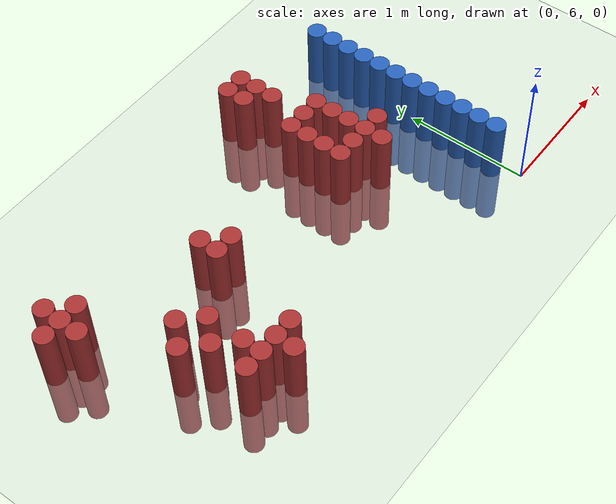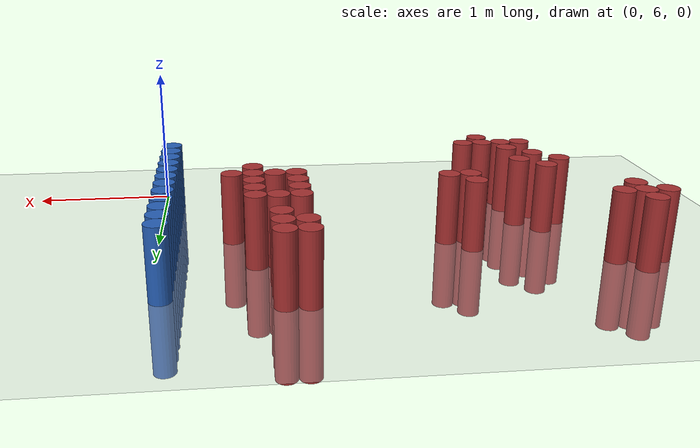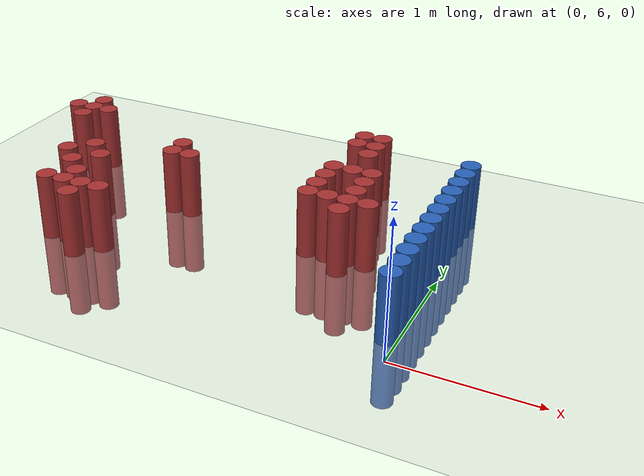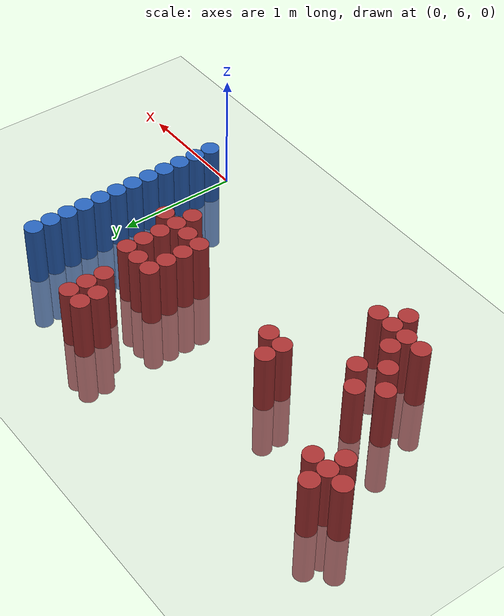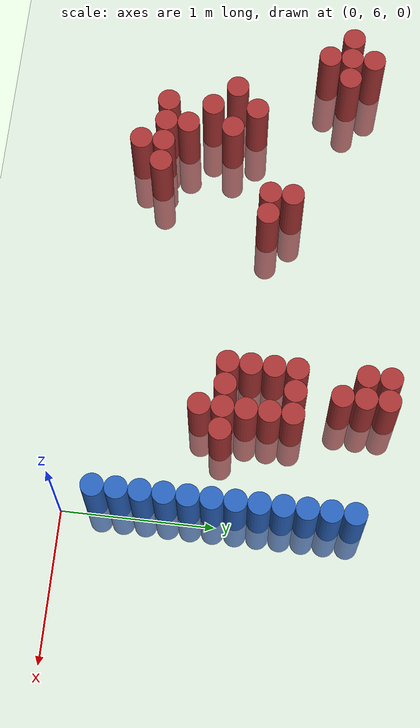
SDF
<sdf version="1.6">
 <world name="default">
  <model name="ground_plane">
   <static>1</static>
   <link name="link">
    <collision name="collision">
     <geometry><plane><normal>0 0 1</normal><size>100 100</size></plane></geometry>
     <surface><friction><ode><mu>100</mu><mu2>50</mu2></ode></friction></surface>
    </collision>
    <visual name="visual">
     <cast_shadows>0</cast_shadows>
     <geometry><plane><normal>0 0 1</normal><size>100 100</size></plane></geometry>
     <material>
      <script><uri>file://media/materials/scripts/gazebo.material</uri><name>Gazebo/Grey</name></script>
     </material>
    </visual>
   </link>
  </model>
  <model name="unit_cylinder_162">
   <static>1</static>
   <pose>-3.375000 7.575000 0.000000 0.000000 0.000000 0.000000</pose>
   <link name="link">
    <inertial>
     <mass>1</mass>
     <inertia><ixx>0.145833</ixx><ixy>0</ixy><ixz>0</ixz><iyy>0.145833</iyy><iyz>0</iyz><izz>0.125</izz></inertia>
    </inertial>
    <collision name="collision">
     <geometry><cylinder><radius>0.075000</radius><length>1</length></cylinder></geometry>
    </collision>
    <visual name="visual">
     <geometry><cylinder><radius>0.075000</radius><length>1</length></cylinder></geometry>
     <material>
      <ambient>0.648000 0.192000 0.192000 1</ambient>
      <diffuse>0.648000 0.192000 0.192000 1</diffuse>
     </material>
     <material>
      <script><name>Gazebo/Grey</name><uri>file://media/materials/scripts/gazebo.material</uri></script>
     </material>
    </visual>
   </link>
  </model>
  <model name="unit_cylinder_163">
   <static>1</static>
   <pose>-3.225000 7.425000 0.000000 0.000000 0.000000 0.000000</pose>
   <link name="link">
    <inertial>
     <mass>1</mass>
     <inertia><ixx>0.145833</ixx><ixy>0</ixy><ixz>0</ixz><iyy>0.145833</iyy><iyz>0</iyz><izz>0.125</izz></inertia>
    </inertial>
    <collision name="collision">
     <geometry><cylinder><radius>0.075000</radius><length>1</length></cylinder></geometry>
    </collision>
    <visual name="visual">
     <geometry><cylinder><radius>0.075000</radius><length>1</length></cylinder></geometry>
     <material>
      <ambient>0.648000 0.192000 0.192000 1</ambient>
      <diffuse>0.648000 0.192000 0.192000 1</diffuse>
     </material>
     <material>
      <script><name>Gazebo/Grey</name><uri>file://media/materials/scripts/gazebo.material</uri></script>
     </material>
    </visual>
   </link>
  </model>
  <model name="unit_cylinder_164">
   <static>1</static>
   <pose>-3.225000 7.575000 0.000000 0.000000 0.000000 0.000000</pose>
   <link name="link">
    <inertial>
     <mass>1</mass>
     <inertia><ixx>0.145833</ixx><ixy>0</ixy><ixz>0</ixz><iyy>0.145833</iyy><iyz>0</iyz><izz>0.125</izz></inertia>
    </inertial>
    <collision name="collision">
     <geometry><cylinder><radius>0.075000</radius><length>1</length></cylinder></geometry>
    </collision>
    <visual name="visual">
     <geometry><cylinder><radius>0.075000</radius><length>1</length></cylinder></geometry>
     <material>
      <ambient>0.648000 0.192000 0.192000 1</ambient>
      <diffuse>0.648000 0.192000 0.192000 1</diffuse>
     </material>
     <material>
      <script><name>Gazebo/Grey</name><uri>file://media/materials/scripts/gazebo.material</uri></script>
     </material>
    </visual>
   </link>
  </model>
  <model name="unit_cylinder_165">
   <static>1</static>
   <pose>-3.225000 7.725000 0.000000 0.000000 0.000000 0.000000</pose>
   <link name="link">
    <inertial>
     <mass>1</mass>
     <inertia><ixx>0.145833</ixx><ixy>0</ixy><ixz>0</ixz><iyy>0.145833</iyy><iyz>0</iyz><izz>0.125</izz></inertia>
    </inertial>
    <collision name="collision">
     <geometry><cylinder><radius>0.075000</radius><length>1</length></cylinder></geometry>
    </collision>
    <visual name="visual">
     <geometry><cylinder><radius>0.075000</radius><length>1</length></cylinder></geometry>
     <material>
      <ambient>0.648000 0.192000 0.192000 1</ambient>
      <diffuse>0.648000 0.192000 0.192000 1</diffuse>
     </material>
     <material>
      <script><name>Gazebo/Grey</name><uri>file://media/materials/scripts/gazebo.material</uri></script>
     </material>
    </visual>
   </link>
  </model>
  <model name="unit_cylinder_169">
   <static>1</static>
   <pose>-3.075000 7.575000 0.000000 0.000000 0.000000 0.000000</pose>
   <link name="link">
    <inertial>
     <mass>1</mass>
     <inertia><ixx>0.145833</ixx><ixy>0</ixy><ixz>0</ixz><iyy>0.145833</iyy><iyz>0</iyz><izz>0.125</izz></inertia>
    </inertial>
    <collision name="collision">
     <geometry><cylinder><radius>0.075000</radius><length>1</length></cylinder></geometry>
    </collision>
    <visual name="visual">
     <geometry><cylinder><radius>0.075000</radius><length>1</length></cylinder></geometry>
     <material>
      <ambient>0.648000 0.192000 0.192000 1</ambient>
      <diffuse>0.648000 0.192000 0.192000 1</diffuse>
     </material>
     <material>
      <script><name>Gazebo/Grey</name><uri>file://media/materials/scripts/gazebo.material</uri></script>
     </material>
    </visual>
   </link>
  </model>
  <model name="unit_cylinder_175">
   <static>1</static>
   <pose>-2.925000 6.825000 0.000000 0.000000 0.000000 0.000000</pose>
   <link name="link">
    <inertial>
     <mass>1</mass>
     <inertia><ixx>0.145833</ixx><ixy>0</ixy><ixz>0</ixz><iyy>0.145833</iyy><iyz>0</iyz><izz>0.125</izz></inertia>
    </inertial>
    <collision name="collision">
     <geometry><cylinder><radius>0.075000</radius><length>1</length></cylinder></geometry>
    </collision>
    <visual name="visual">
     <geometry><cylinder><radius>0.075000</radius><length>1</length></cylinder></geometry>
     <material>
      <ambient>0.648000 0.192000 0.192000 1</ambient>
      <diffuse>0.648000 0.192000 0.192000 1</diffuse>
     </material>
     <material>
      <script><name>Gazebo/Grey</name><uri>file://media/materials/scripts/gazebo.material</uri></script>
     </material>
    </visual>
   </link>
  </model>
  <model name="unit_cylinder_180">
   <static>1</static>
   <pose>-2.775000 6.375000 0.000000 0.000000 0.000000 0.000000</pose>
   <link name="link">
    <inertial>
     <mass>1</mass>
     <inertia><ixx>0.145833</ixx><ixy>0</ixy><ixz>0</ixz><iyy>0.145833</iyy><iyz>0</iyz><izz>0.125</izz></inertia>
    </inertial>
    <collision name="collision">
     <geometry><cylinder><radius>0.075000</radius><length>1</length></cylinder></geometry>
    </collision>
    <visual name="visual">
     <geometry><cylinder><radius>0.075000</radius><length>1</length></cylinder></geometry>
     <material>
      <ambient>0.648000 0.192000 0.192000 1</ambient>
      <diffuse>0.648000 0.192000 0.192000 1</diffuse>
     </material>
     <material>
      <script><name>Gazebo/Grey</name><uri>file://media/materials/scripts/gazebo.material</uri></script>
     </material>
    </visual>
   </link>
  </model>
  <model name="unit_cylinder_181">
   <static>1</static>
   <pose>-2.775000 6.675000 0.000000 0.000000 0.000000 0.000000</pose>
   <link name="link">
    <inertial>
     <mass>1</mass>
     <inertia><ixx>0.145833</ixx><ixy>0</ixy><ixz>0</ixz><iyy>0.145833</iyy><iyz>0</iyz><izz>0.125</izz></inertia>
    </inertial>
    <collision name="collision">
     <geometry><cylinder><radius>0.075000</radius><length>1</length></cylinder></geometry>
    </collision>
    <visual name="visual">
     <geometry><cylinder><radius>0.075000</radius><length>1</length></cylinder></geometry>
     <material>
      <ambient>0.648000 0.192000 0.192000 1</ambient>
      <diffuse>0.648000 0.192000 0.192000 1</diffuse>
     </material>
     <material>
      <script><name>Gazebo/Grey</name><uri>file://media/materials/scripts/gazebo.material</uri></script>
     </material>
    </visual>
   </link>
  </model>
  <model name="unit_cylinder_182">
   <static>1</static>
   <pose>-2.775000 6.975000 0.000000 0.000000 0.000000 0.000000</pose>
   <link name="link">
    <inertial>
     <mass>1</mass>
     <inertia><ixx>0.145833</ixx><ixy>0</ixy><ixz>0</ixz><iyy>0.145833</iyy><iyz>0</iyz><izz>0.125</izz></inertia>
    </inertial>
    <collision name="collision">
     <geometry><cylinder><radius>0.075000</radius><length>1</length></cylinder></geometry>
    </collision>
    <visual name="visual">
     <geometry><cylinder><radius>0.075000</radius><length>1</length></cylinder></geometry>
     <material>
      <ambient>0.648000 0.192000 0.192000 1</ambient>
      <diffuse>0.648000 0.192000 0.192000 1</diffuse>
     </material>
     <material>
      <script><name>Gazebo/Grey</name><uri>file://media/materials/scripts/gazebo.material</uri></script>
     </material>
    </visual>
   </link>
  </model>
  <model name="unit_cylinder_188">
   <static>1</static>
   <pose>-2.625000 6.375000 0.000000 0.000000 0.000000 0.000000</pose>
   <link name="link">
    <inertial>
     <mass>1</mass>
     <inertia><ixx>0.145833</ixx><ixy>0</ixy><ixz>0</ixz><iyy>0.145833</iyy><iyz>0</iyz><izz>0.125</izz></inertia>
    </inertial>
    <collision name="collision">
     <geometry><cylinder><radius>0.075000</radius><length>1</length></cylinder></geometry>
    </collision>
    <visual name="visual">
     <geometry><cylinder><radius>0.075000</radius><length>1</length></cylinder></geometry>
     <material>
      <ambient>0.648000 0.192000 0.192000 1</ambient>
      <diffuse>0.648000 0.192000 0.192000 1</diffuse>
     </material>
     <material>
      <script><name>Gazebo/Grey</name><uri>file://media/materials/scripts/gazebo.material</uri></script>
     </material>
    </visual>
   </link>
  </model>
  <model name="unit_cylinder_189">
   <static>1</static>
   <pose>-2.625000 6.525000 0.000000 0.000000 0.000000 0.000000</pose>
   <link name="link">
    <inertial>
     <mass>1</mass>
     <inertia><ixx>0.145833</ixx><ixy>0</ixy><ixz>0</ixz><iyy>0.145833</iyy><iyz>0</iyz><izz>0.125</izz></inertia>
    </inertial>
    <collision name="collision">
     <geometry><cylinder><radius>0.075000</radius><length>1</length></cylinder></geometry>
    </collision>
    <visual name="visual">
     <geometry><cylinder><radius>0.075000</radius><length>1</length></cylinder></geometry>
     <material>
      <ambient>0.648000 0.192000 0.192000 1</ambient>
      <diffuse>0.648000 0.192000 0.192000 1</diffuse>
     </material>
     <material>
      <script><name>Gazebo/Grey</name><uri>file://media/materials/scripts/gazebo.material</uri></script>
     </material>
    </visual>
   </link>
  </model>
  <model name="unit_cylinder_190">
   <static>1</static>
   <pose>-2.625000 6.825000 0.000000 0.000000 0.000000 0.000000</pose>
   <link name="link">
    <inertial>
     <mass>1</mass>
     <inertia><ixx>0.145833</ixx><ixy>0</ixy><ixz>0</ixz><iyy>0.145833</iyy><iyz>0</iyz><izz>0.125</izz></inertia>
    </inertial>
    <collision name="collision">
     <geometry><cylinder><radius>0.075000</radius><length>1</length></cylinder></geometry>
    </collision>
    <visual name="visual">
     <geometry><cylinder><radius>0.075000</radius><length>1</length></cylinder></geometry>
     <material>
      <ambient>0.648000 0.192000 0.192000 1</ambient>
      <diffuse>0.648000 0.192000 0.192000 1</diffuse>
     </material>
     <material>
      <script><name>Gazebo/Grey</name><uri>file://media/materials/scripts/gazebo.material</uri></script>
     </material>
    </visual>
   </link>
  </model>
  <model name="unit_cylinder_194">
   <static>1</static>
   <pose>-2.475000 6.225000 0.000000 0.000000 0.000000 0.000000</pose>
   <link name="link">
    <inertial>
     <mass>1</mass>
     <inertia><ixx>0.145833</ixx><ixy>0</ixy><ixz>0</ixz><iyy>0.145833</iyy><iyz>0</iyz><izz>0.125</izz></inertia>
    </inertial>
    <collision name="collision">
     <geometry><cylinder><radius>0.075000</radius><length>1</length></cylinder></geometry>
    </collision>
    <visual name="visual">
     <geometry><cylinder><radius>0.075000</radius><length>1</length></cylinder></geometry>
     <material>
      <ambient>0.648000 0.192000 0.192000 1</ambient>
      <diffuse>0.648000 0.192000 0.192000 1</diffuse>
     </material>
     <material>
      <script><name>Gazebo/Grey</name><uri>file://media/materials/scripts/gazebo.material</uri></script>
     </material>
    </visual>
   </link>
  </model>
  <model name="unit_cylinder_195">
   <static>1</static>
   <pose>-2.475000 6.375000 0.000000 0.000000 0.000000 0.000000</pose>
   <link name="link">
    <inertial>
     <mass>1</mass>
     <inertia><ixx>0.145833</ixx><ixy>0</ixy><ixz>0</ixz><iyy>0.145833</iyy><iyz>0</iyz><izz>0.125</izz></inertia>
    </inertial>
    <collision name="collision">
     <geometry><cylinder><radius>0.075000</radius><length>1</length></cylinder></geometry>
    </collision>
    <visual name="visual">
     <geometry><cylinder><radius>0.075000</radius><length>1</length></cylinder></geometry>
     <material>
      <ambient>0.648000 0.192000 0.192000 1</ambient>
      <diffuse>0.648000 0.192000 0.192000 1</diffuse>
     </material>
     <material>
      <script><name>Gazebo/Grey</name><uri>file://media/materials/scripts/gazebo.material</uri></script>
     </material>
    </visual>
   </link>
  </model>
  <model name="unit_cylinder_196">
   <static>1</static>
   <pose>-2.325000 6.375000 0.000000 0.000000 0.000000 0.000000</pose>
   <link name="link">
    <inertial>
     <mass>1</mass>
     <inertia><ixx>0.145833</ixx><ixy>0</ixy><ixz>0</ixz><iyy>0.145833</iyy><iyz>0</iyz><izz>0.125</izz></inertia>
    </inertial>
    <collision name="collision">
     <geometry><cylinder><radius>0.075000</radius><length>1</length></cylinder></geometry>
    </collision>
    <visual name="visual">
     <geometry><cylinder><radius>0.075000</radius><length>1</length></cylinder></geometry>
     <material>
      <ambient>0.648000 0.192000 0.192000 1</ambient>
      <diffuse>0.648000 0.192000 0.192000 1</diffuse>
     </material>
     <material>
      <script><name>Gazebo/Grey</name><uri>file://media/materials/scripts/gazebo.material</uri></script>
     </material>
    </visual>
   </link>
  </model>
  <model name="unit_cylinder_198">
   <static>1</static>
   <pose>-2.175000 7.125000 0.000000 0.000000 0.000000 0.000000</pose>
   <link name="link">
    <inertial>
     <mass>1</mass>
     <inertia><ixx>0.145833</ixx><ixy>0</ixy><ixz>0</ixz><iyy>0.145833</iyy><iyz>0</iyz><izz>0.125</izz></inertia>
    </inertial>
    <collision name="collision">
     <geometry><cylinder><radius>0.075000</radius><length>1</length></cylinder></geometry>
    </collision>
    <visual name="visual">
     <geometry><cylinder><radius>0.075000</radius><length>1</length></cylinder></geometry>
     <material>
      <ambient>0.648000 0.192000 0.192000 1</ambient>
      <diffuse>0.648000 0.192000 0.192000 1</diffuse>
     </material>
     <material>
      <script><name>Gazebo/Grey</name><uri>file://media/materials/scripts/gazebo.material</uri></script>
     </material>
    </visual>
   </link>
  </model>
  <model name="unit_cylinder_199">
   <static>1</static>
   <pose>-2.175000 7.275000 0.000000 0.000000 0.000000 0.000000</pose>
   <link name="link">
    <inertial>
     <mass>1</mass>
     <inertia><ixx>0.145833</ixx><ixy>0</ixy><ixz>0</ixz><iyy>0.145833</iyy><iyz>0</iyz><izz>0.125</izz></inertia>
    </inertial>
    <collision name="collision">
     <geometry><cylinder><radius>0.075000</radius><length>1</length></cylinder></geometry>
    </collision>
    <visual name="visual">
     <geometry><cylinder><radius>0.075000</radius><length>1</length></cylinder></geometry>
     <material>
      <ambient>0.648000 0.192000 0.192000 1</ambient>
      <diffuse>0.648000 0.192000 0.192000 1</diffuse>
     </material>
     <material>
      <script><name>Gazebo/Grey</name><uri>file://media/materials/scripts/gazebo.material</uri></script>
     </material>
    </visual>
   </link>
  </model>
  <model name="unit_cylinder_204">
   <static>1</static>
   <pose>-2.025000 7.125000 0.000000 0.000000 0.000000 0.000000</pose>
   <link name="link">
    <inertial>
     <mass>1</mass>
     <inertia><ixx>0.145833</ixx><ixy>0</ixy><ixz>0</ixz><iyy>0.145833</iyy><iyz>0</iyz><izz>0.125</izz></inertia>
    </inertial>
    <collision name="collision">
     <geometry><cylinder><radius>0.075000</radius><length>1</length></cylinder></geometry>
    </collision>
    <visual name="visual">
     <geometry><cylinder><radius>0.075000</radius><length>1</length></cylinder></geometry>
     <material>
      <ambient>0.648000 0.192000 0.192000 1</ambient>
      <diffuse>0.648000 0.192000 0.192000 1</diffuse>
     </material>
     <material>
      <script><name>Gazebo/Grey</name><uri>file://media/materials/scripts/gazebo.material</uri></script>
     </material>
    </visual>
   </link>
  </model>
  <model name="unit_cylinder_219">
   <static>1</static>
   <pose>-0.975000 6.975000 0.000000 0.000000 0.000000 0.000000</pose>
   <link name="link">
    <inertial>
     <mass>1</mass>
     <inertia><ixx>0.145833</ixx><ixy>0</ixy><ixz>0</ixz><iyy>0.145833</iyy><iyz>0</iyz><izz>0.125</izz></inertia>
    </inertial>
    <collision name="collision">
     <geometry><cylinder><radius>0.075000</radius><length>1</length></cylinder></geometry>
    </collision>
    <visual name="visual">
     <geometry><cylinder><radius>0.075000</radius><length>1</length></cylinder></geometry>
     <material>
      <ambient>0.648000 0.192000 0.192000 1</ambient>
      <diffuse>0.648000 0.192000 0.192000 1</diffuse>
     </material>
     <material>
      <script><name>Gazebo/Grey</name><uri>file://media/materials/scripts/gazebo.material</uri></script>
     </material>
    </visual>
   </link>
  </model>
  <model name="unit_cylinder_220">
   <static>1</static>
   <pose>-0.975000 7.125000 0.000000 0.000000 0.000000 0.000000</pose>
   <link name="link">
    <inertial>
     <mass>1</mass>
     <inertia><ixx>0.145833</ixx><ixy>0</ixy><ixz>0</ixz><iyy>0.145833</iyy><iyz>0</iyz><izz>0.125</izz></inertia>
    </inertial>
    <collision name="collision">
     <geometry><cylinder><radius>0.075000</radius><length>1</length></cylinder></geometry>
    </collision>
    <visual name="visual">
     <geometry><cylinder><radius>0.075000</radius><length>1</length></cylinder></geometry>
     <material>
      <ambient>0.648000 0.192000 0.192000 1</ambient>
      <diffuse>0.648000 0.192000 0.192000 1</diffuse>
     </material>
     <material>
      <script><name>Gazebo/Grey</name><uri>file://media/materials/scripts/gazebo.material</uri></script>
     </material>
    </visual>
   </link>
  </model>
  <model name="unit_cylinder_221">
   <static>1</static>
   <pose>-0.975000 7.275000 0.000000 0.000000 0.000000 0.000000</pose>
   <link name="link">
    <inertial>
     <mass>1</mass>
     <inertia><ixx>0.145833</ixx><ixy>0</ixy><ixz>0</ixz><iyy>0.145833</iyy><iyz>0</iyz><izz>0.125</izz></inertia>
    </inertial>
    <collision name="collision">
     <geometry><cylinder><radius>0.075000</radius><length>1</length></cylinder></geometry>
    </collision>
    <visual name="visual">
     <geometry><cylinder><radius>0.075000</radius><length>1</length></cylinder></geometry>
     <material>
      <ambient>0.648000 0.192000 0.192000 1</ambient>
      <diffuse>0.648000 0.192000 0.192000 1</diffuse>
     </material>
     <material>
      <script><name>Gazebo/Grey</name><uri>file://media/materials/scripts/gazebo.material</uri></script>
     </material>
    </visual>
   </link>
  </model>
  <model name="unit_cylinder_222">
   <static>1</static>
   <pose>-0.975000 7.425000 0.000000 0.000000 0.000000 0.000000</pose>
   <link name="link">
    <inertial>
     <mass>1</mass>
     <inertia><ixx>0.145833</ixx><ixy>0</ixy><ixz>0</ixz><iyy>0.145833</iyy><iyz>0</iyz><izz>0.125</izz></inertia>
    </inertial>
    <collision name="collision">
     <geometry><cylinder><radius>0.075000</radius><length>1</length></cylinder></geometry>
    </collision>
    <visual name="visual">
     <geometry><cylinder><radius>0.075000</radius><length>1</length></cylinder></geometry>
     <material>
      <ambient>0.648000 0.192000 0.192000 1</ambient>
      <diffuse>0.648000 0.192000 0.192000 1</diffuse>
     </material>
     <material>
      <script><name>Gazebo/Grey</name><uri>file://media/materials/scripts/gazebo.material</uri></script>
     </material>
    </visual>
   </link>
  </model>
  <model name="unit_cylinder_223">
   <static>1</static>
   <pose>-0.975000 7.875000 0.000000 0.000000 0.000000 0.000000</pose>
   <link name="link">
    <inertial>
     <mass>1</mass>
     <inertia><ixx>0.145833</ixx><ixy>0</ixy><ixz>0</ixz><iyy>0.145833</iyy><iyz>0</iyz><izz>0.125</izz></inertia>
    </inertial>
    <collision name="collision">
     <geometry><cylinder><radius>0.075000</radius><length>1</length></cylinder></geometry>
    </collision>
    <visual name="visual">
     <geometry><cylinder><radius>0.075000</radius><length>1</length></cylinder></geometry>
     <material>
      <ambient>0.648000 0.192000 0.192000 1</ambient>
      <diffuse>0.648000 0.192000 0.192000 1</diffuse>
     </material>
     <material>
      <script><name>Gazebo/Grey</name><uri>file://media/materials/scripts/gazebo.material</uri></script>
     </material>
    </visual>
   </link>
  </model>
  <model name="unit_cylinder_224">
   <static>1</static>
   <pose>-0.975000 8.025000 0.000000 0.000000 0.000000 0.000000</pose>
   <link name="link">
    <inertial>
     <mass>1</mass>
     <inertia><ixx>0.145833</ixx><ixy>0</ixy><ixz>0</ixz><iyy>0.145833</iyy><iyz>0</iyz><izz>0.125</izz></inertia>
    </inertial>
    <collision name="collision">
     <geometry><cylinder><radius>0.075000</radius><length>1</length></cylinder></geometry>
    </collision>
    <visual name="visual">
     <geometry><cylinder><radius>0.075000</radius><length>1</length></cylinder></geometry>
     <material>
      <ambient>0.648000 0.192000 0.192000 1</ambient>
      <diffuse>0.648000 0.192000 0.192000 1</diffuse>
     </material>
     <material>
      <script><name>Gazebo/Grey</name><uri>file://media/materials/scripts/gazebo.material</uri></script>
     </material>
    </visual>
   </link>
  </model>
  <model name="unit_cylinder_226">
   <static>1</static>
   <pose>-0.825000 6.975000 0.000000 0.000000 0.000000 0.000000</pose>
   <link name="link">
    <inertial>
     <mass>1</mass>
     <inertia><ixx>0.145833</ixx><ixy>0</ixy><ixz>0</ixz><iyy>0.145833</iyy><iyz>0</iyz><izz>0.125</izz></inertia>
    </inertial>
    <collision name="collision">
     <geometry><cylinder><radius>0.075000</radius><length>1</length></cylinder></geometry>
    </collision>
    <visual name="visual">
     <geometry><cylinder><radius>0.075000</radius><length>1</length></cylinder></geometry>
     <material>
      <ambient>0.648000 0.192000 0.192000 1</ambient>
      <diffuse>0.648000 0.192000 0.192000 1</diffuse>
     </material>
     <material>
      <script><name>Gazebo/Grey</name><uri>file://media/materials/scripts/gazebo.material</uri></script>
     </material>
    </visual>
   </link>
  </model>
  <model name="unit_cylinder_227">
   <static>1</static>
   <pose>-0.825000 7.425000 0.000000 0.000000 0.000000 0.000000</pose>
   <link name="link">
    <inertial>
     <mass>1</mass>
     <inertia><ixx>0.145833</ixx><ixy>0</ixy><ixz>0</ixz><iyy>0.145833</iyy><iyz>0</iyz><izz>0.125</izz></inertia>
    </inertial>
    <collision name="collision">
     <geometry><cylinder><radius>0.075000</radius><length>1</length></cylinder></geometry>
    </collision>
    <visual name="visual">
     <geometry><cylinder><radius>0.075000</radius><length>1</length></cylinder></geometry>
     <material>
      <ambient>0.648000 0.192000 0.192000 1</ambient>
      <diffuse>0.648000 0.192000 0.192000 1</diffuse>
     </material>
     <material>
      <script><name>Gazebo/Grey</name><uri>file://media/materials/scripts/gazebo.material</uri></script>
     </material>
    </visual>
   </link>
  </model>
  <model name="unit_cylinder_228">
   <static>1</static>
   <pose>-0.825000 7.725000 0.000000 0.000000 0.000000 0.000000</pose>
   <link name="link">
    <inertial>
     <mass>1</mass>
     <inertia><ixx>0.145833</ixx><ixy>0</ixy><ixz>0</ixz><iyy>0.145833</iyy><iyz>0</iyz><izz>0.125</izz></inertia>
    </inertial>
    <collision name="collision">
     <geometry><cylinder><radius>0.075000</radius><length>1</length></cylinder></geometry>
    </collision>
    <visual name="visual">
     <geometry><cylinder><radius>0.075000</radius><length>1</length></cylinder></geometry>
     <material>
      <ambient>0.648000 0.192000 0.192000 1</ambient>
      <diffuse>0.648000 0.192000 0.192000 1</diffuse>
     </material>
     <material>
      <script><name>Gazebo/Grey</name><uri>file://media/materials/scripts/gazebo.material</uri></script>
     </material>
    </visual>
   </link>
  </model>
  <model name="unit_cylinder_229">
   <static>1</static>
   <pose>-0.825000 7.875000 0.000000 0.000000 0.000000 0.000000</pose>
   <link name="link">
    <inertial>
     <mass>1</mass>
     <inertia><ixx>0.145833</ixx><ixy>0</ixy><ixz>0</ixz><iyy>0.145833</iyy><iyz>0</iyz><izz>0.125</izz></inertia>
    </inertial>
    <collision name="collision">
     <geometry><cylinder><radius>0.075000</radius><length>1</length></cylinder></geometry>
    </collision>
    <visual name="visual">
     <geometry><cylinder><radius>0.075000</radius><length>1</length></cylinder></geometry>
     <material>
      <ambient>0.648000 0.192000 0.192000 1</ambient>
      <diffuse>0.648000 0.192000 0.192000 1</diffuse>
     </material>
     <material>
      <script><name>Gazebo/Grey</name><uri>file://media/materials/scripts/gazebo.material</uri></script>
     </material>
    </visual>
   </link>
  </model>
  <model name="unit_cylinder_230">
   <static>1</static>
   <pose>-0.825000 8.025000 0.000000 0.000000 0.000000 0.000000</pose>
   <link name="link">
    <inertial>
     <mass>1</mass>
     <inertia><ixx>0.145833</ixx><ixy>0</ixy><ixz>0</ixz><iyy>0.145833</iyy><iyz>0</iyz><izz>0.125</izz></inertia>
    </inertial>
    <collision name="collision">
     <geometry><cylinder><radius>0.075000</radius><length>1</length></cylinder></geometry>
    </collision>
    <visual name="visual">
     <geometry><cylinder><radius>0.075000</radius><length>1</length></cylinder></geometry>
     <material>
      <ambient>0.648000 0.192000 0.192000 1</ambient>
      <diffuse>0.648000 0.192000 0.192000 1</diffuse>
     </material>
     <material>
      <script><name>Gazebo/Grey</name><uri>file://media/materials/scripts/gazebo.material</uri></script>
     </material>
    </visual>
   </link>
  </model>
  <model name="unit_cylinder_233">
   <static>1</static>
   <pose>-0.675000 6.825000 0.000000 0.000000 0.000000 0.000000</pose>
   <link name="link">
    <inertial>
     <mass>1</mass>
     <inertia><ixx>0.145833</ixx><ixy>0</ixy><ixz>0</ixz><iyy>0.145833</iyy><iyz>0</iyz><izz>0.125</izz></inertia>
    </inertial>
    <collision name="collision">
     <geometry><cylinder><radius>0.075000</radius><length>1</length></cylinder></geometry>
    </collision>
    <visual name="visual">
     <geometry><cylinder><radius>0.075000</radius><length>1</length></cylinder></geometry>
     <material>
      <ambient>0.648000 0.192000 0.192000 1</ambient>
      <diffuse>0.648000 0.192000 0.192000 1</diffuse>
     </material>
     <material>
      <script><name>Gazebo/Grey</name><uri>file://media/materials/scripts/gazebo.material</uri></script>
     </material>
    </visual>
   </link>
  </model>
  <model name="unit_cylinder_234">
   <static>1</static>
   <pose>-0.675000 6.975000 0.000000 0.000000 0.000000 0.000000</pose>
   <link name="link">
    <inertial>
     <mass>1</mass>
     <inertia><ixx>0.145833</ixx><ixy>0</ixy><ixz>0</ixz><iyy>0.145833</iyy><iyz>0</iyz><izz>0.125</izz></inertia>
    </inertial>
    <collision name="collision">
     <geometry><cylinder><radius>0.075000</radius><length>1</length></cylinder></geometry>
    </collision>
    <visual name="visual">
     <geometry><cylinder><radius>0.075000</radius><length>1</length></cylinder></geometry>
     <material>
      <ambient>0.648000 0.192000 0.192000 1</ambient>
      <diffuse>0.648000 0.192000 0.192000 1</diffuse>
     </material>
     <material>
      <script><name>Gazebo/Grey</name><uri>file://media/materials/scripts/gazebo.material</uri></script>
     </material>
    </visual>
   </link>
  </model>
  <model name="unit_cylinder_235">
   <static>1</static>
   <pose>-0.675000 7.125000 0.000000 0.000000 0.000000 0.000000</pose>
   <link name="link">
    <inertial>
     <mass>1</mass>
     <inertia><ixx>0.145833</ixx><ixy>0</ixy><ixz>0</ixz><iyy>0.145833</iyy><iyz>0</iyz><izz>0.125</izz></inertia>
    </inertial>
    <collision name="collision">
     <geometry><cylinder><radius>0.075000</radius><length>1</length></cylinder></geometry>
    </collision>
    <visual name="visual">
     <geometry><cylinder><radius>0.075000</radius><length>1</length></cylinder></geometry>
     <material>
      <ambient>0.648000 0.192000 0.192000 1</ambient>
      <diffuse>0.648000 0.192000 0.192000 1</diffuse>
     </material>
     <material>
      <script><name>Gazebo/Grey</name><uri>file://media/materials/scripts/gazebo.material</uri></script>
     </material>
    </visual>
   </link>
  </model>
  <model name="unit_cylinder_236">
   <static>1</static>
   <pose>-0.675000 7.275000 0.000000 0.000000 0.000000 0.000000</pose>
   <link name="link">
    <inertial>
     <mass>1</mass>
     <inertia><ixx>0.145833</ixx><ixy>0</ixy><ixz>0</ixz><iyy>0.145833</iyy><iyz>0</iyz><izz>0.125</izz></inertia>
    </inertial>
    <collision name="collision">
     <geometry><cylinder><radius>0.075000</radius><length>1</length></cylinder></geometry>
    </collision>
    <visual name="visual">
     <geometry><cylinder><radius>0.075000</radius><length>1</length></cylinder></geometry>
     <material>
      <ambient>0.648000 0.192000 0.192000 1</ambient>
      <diffuse>0.648000 0.192000 0.192000 1</diffuse>
     </material>
     <material>
      <script><name>Gazebo/Grey</name><uri>file://media/materials/scripts/gazebo.material</uri></script>
     </material>
    </visual>
   </link>
  </model>
  <model name="unit_cylinder_237">
   <static>1</static>
   <pose>-0.675000 7.425000 0.000000 0.000000 0.000000 0.000000</pose>
   <link name="link">
    <inertial>
     <mass>1</mass>
     <inertia><ixx>0.145833</ixx><ixy>0</ixy><ixz>0</ixz><iyy>0.145833</iyy><iyz>0</iyz><izz>0.125</izz></inertia>
    </inertial>
    <collision name="collision">
     <geometry><cylinder><radius>0.075000</radius><length>1</length></cylinder></geometry>
    </collision>
    <visual name="visual">
     <geometry><cylinder><radius>0.075000</radius><length>1</length></cylinder></geometry>
     <material>
      <ambient>0.648000 0.192000 0.192000 1</ambient>
      <diffuse>0.648000 0.192000 0.192000 1</diffuse>
     </material>
     <material>
      <script><name>Gazebo/Grey</name><uri>file://media/materials/scripts/gazebo.material</uri></script>
     </material>
    </visual>
   </link>
  </model>
  <model name="unit_cylinder_240">
   <static>1</static>
   <pose>-0.525000 6.975000 0.000000 0.000000 0.000000 0.000000</pose>
   <link name="link">
    <inertial>
     <mass>1</mass>
     <inertia><ixx>0.145833</ixx><ixy>0</ixy><ixz>0</ixz><iyy>0.145833</iyy><iyz>0</iyz><izz>0.125</izz></inertia>
    </inertial>
    <collision name="collision">
     <geometry><cylinder><radius>0.075000</radius><length>1</length></cylinder></geometry>
    </collision>
    <visual name="visual">
     <geometry><cylinder><radius>0.075000</radius><length>1</length></cylinder></geometry>
     <material>
      <ambient>0.648000 0.192000 0.192000 1</ambient>
      <diffuse>0.648000 0.192000 0.192000 1</diffuse>
     </material>
     <material>
      <script><name>Gazebo/Grey</name><uri>file://media/materials/scripts/gazebo.material</uri></script>
     </material>
    </visual>
   </link>
  </model>
  <model name="unit_cylinder_262">
   <static>1</static>
   <pose>-0.075000 6.225000 0.000000 0.000000 0.000000 0.000000</pose>
   <link name="link">
    <inertial>
     <mass>1</mass>
     <inertia><ixx>0.145833</ixx><ixy>0</ixy><ixz>0</ixz><iyy>0.145833</iyy><iyz>0</iyz><izz>0.125</izz></inertia>
    </inertial>
    <collision name="collision">
     <geometry><cylinder><radius>0.075000</radius><length>1</length></cylinder></geometry>
    </collision>
    <visual name="visual">
     <geometry><cylinder><radius>0.075000</radius><length>1</length></cylinder></geometry>
     <material>
      <ambient>0.152000 0.379000 0.720000 1</ambient>
      <diffuse>0.152000 0.379000 0.720000 1</diffuse>
     </material>
     <material>
      <script><name>Gazebo/Grey</name><uri>file://media/materials/scripts/gazebo.material</uri></script>
     </material>
    </visual>
   </link>
  </model>
  <model name="unit_cylinder_263">
   <static>1</static>
   <pose>-0.075000 6.375000 0.000000 0.000000 0.000000 0.000000</pose>
   <link name="link">
    <inertial>
     <mass>1</mass>
     <inertia><ixx>0.145833</ixx><ixy>0</ixy><ixz>0</ixz><iyy>0.145833</iyy><iyz>0</iyz><izz>0.125</izz></inertia>
    </inertial>
    <collision name="collision">
     <geometry><cylinder><radius>0.075000</radius><length>1</length></cylinder></geometry>
    </collision>
    <visual name="visual">
     <geometry><cylinder><radius>0.075000</radius><length>1</length></cylinder></geometry>
     <material>
      <ambient>0.152000 0.379000 0.720000 1</ambient>
      <diffuse>0.152000 0.379000 0.720000 1</diffuse>
     </material>
     <material>
      <script><name>Gazebo/Grey</name><uri>file://media/materials/scripts/gazebo.material</uri></script>
     </material>
    </visual>
   </link>
  </model>
  <model name="unit_cylinder_264">
   <static>1</static>
   <pose>-0.075000 6.525000 0.000000 0.000000 0.000000 0.000000</pose>
   <link name="link">
    <inertial>
     <mass>1</mass>
     <inertia><ixx>0.145833</ixx><ixy>0</ixy><ixz>0</ixz><iyy>0.145833</iyy><iyz>0</iyz><izz>0.125</izz></inertia>
    </inertial>
    <collision name="collision">
     <geometry><cylinder><radius>0.075000</radius><length>1</length></cylinder></geometry>
    </collision>
    <visual name="visual">
     <geometry><cylinder><radius>0.075000</radius><length>1</length></cylinder></geometry>
     <material>
      <ambient>0.152000 0.379000 0.720000 1</ambient>
      <diffuse>0.152000 0.379000 0.720000 1</diffuse>
     </material>
     <material>
      <script><name>Gazebo/Grey</name><uri>file://media/materials/scripts/gazebo.material</uri></script>
     </material>
    </visual>
   </link>
  </model>
  <model name="unit_cylinder_265">
   <static>1</static>
   <pose>-0.075000 6.675000 0.000000 0.000000 0.000000 0.000000</pose>
   <link name="link">
    <inertial>
     <mass>1</mass>
     <inertia><ixx>0.145833</ixx><ixy>0</ixy><ixz>0</ixz><iyy>0.145833</iyy><iyz>0</iyz><izz>0.125</izz></inertia>
    </inertial>
    <collision name="collision">
     <geometry><cylinder><radius>0.075000</radius><length>1</length></cylinder></geometry>
    </collision>
    <visual name="visual">
     <geometry><cylinder><radius>0.075000</radius><length>1</length></cylinder></geometry>
     <material>
      <ambient>0.152000 0.379000 0.720000 1</ambient>
      <diffuse>0.152000 0.379000 0.720000 1</diffuse>
     </material>
     <material>
      <script><name>Gazebo/Grey</name><uri>file://media/materials/scripts/gazebo.material</uri></script>
     </material>
    </visual>
   </link>
  </model>
  <model name="unit_cylinder_266">
   <static>1</static>
   <pose>-0.075000 6.825000 0.000000 0.000000 0.000000 0.000000</pose>
   <link name="link">
    <inertial>
     <mass>1</mass>
     <inertia><ixx>0.145833</ixx><ixy>0</ixy><ixz>0</ixz><iyy>0.145833</iyy><iyz>0</iyz><izz>0.125</izz></inertia>
    </inertial>
    <collision name="collision">
     <geometry><cylinder><radius>0.075000</radius><length>1</length></cylinder></geometry>
    </collision>
    <visual name="visual">
     <geometry><cylinder><radius>0.075000</radius><length>1</length></cylinder></geometry>
     <material>
      <ambient>0.152000 0.379000 0.720000 1</ambient>
      <diffuse>0.152000 0.379000 0.720000 1</diffuse>
     </material>
     <material>
      <script><name>Gazebo/Grey</name><uri>file://media/materials/scripts/gazebo.material</uri></script>
     </material>
    </visual>
   </link>
  </model>
  <model name="unit_cylinder_267">
   <static>1</static>
   <pose>-0.075000 6.975000 0.000000 0.000000 0.000000 0.000000</pose>
   <link name="link">
    <inertial>
     <mass>1</mass>
     <inertia><ixx>0.145833</ixx><ixy>0</ixy><ixz>0</ixz><iyy>0.145833</iyy><iyz>0</iyz><izz>0.125</izz></inertia>
    </inertial>
    <collision name="collision">
     <geometry><cylinder><radius>0.075000</radius><length>1</length></cylinder></geometry>
    </collision>
    <visual name="visual">
     <geometry><cylinder><radius>0.075000</radius><length>1</length></cylinder></geometry>
     <material>
      <ambient>0.152000 0.379000 0.720000 1</ambient>
      <diffuse>0.152000 0.379000 0.720000 1</diffuse>
     </material>
     <material>
      <script><name>Gazebo/Grey</name><uri>file://media/materials/scripts/gazebo.material</uri></script>
     </material>
    </visual>
   </link>
  </model>
  <model name="unit_cylinder_268">
   <static>1</static>
   <pose>-0.075000 7.125000 0.000000 0.000000 0.000000 0.000000</pose>
   <link name="link">
    <inertial>
     <mass>1</mass>
     <inertia><ixx>0.145833</ixx><ixy>0</ixy><ixz>0</ixz><iyy>0.145833</iyy><iyz>0</iyz><izz>0.125</izz></inertia>
    </inertial>
    <collision name="collision">
     <geometry><cylinder><radius>0.075000</radius><length>1</length></cylinder></geometry>
    </collision>
    <visual name="visual">
     <geometry><cylinder><radius>0.075000</radius><length>1</length></cylinder></geometry>
     <material>
      <ambient>0.152000 0.379000 0.720000 1</ambient>
      <diffuse>0.152000 0.379000 0.720000 1</diffuse>
     </material>
     <material>
      <script><name>Gazebo/Grey</name><uri>file://media/materials/scripts/gazebo.material</uri></script>
     </material>
    </visual>
   </link>
  </model>
  <model name="unit_cylinder_269">
   <static>1</static>
   <pose>-0.075000 7.275000 0.000000 0.000000 0.000000 0.000000</pose>
   <link name="link">
    <inertial>
     <mass>1</mass>
     <inertia><ixx>0.145833</ixx><ixy>0</ixy><ixz>0</ixz><iyy>0.145833</iyy><iyz>0</iyz><izz>0.125</izz></inertia>
    </inertial>
    <collision name="collision">
     <geometry><cylinder><radius>0.075000</radius><length>1</length></cylinder></geometry>
    </collision>
    <visual name="visual">
     <geometry><cylinder><radius>0.075000</radius><length>1</length></cylinder></geometry>
     <material>
      <ambient>0.152000 0.379000 0.720000 1</ambient>
      <diffuse>0.152000 0.379000 0.720000 1</diffuse>
     </material>
     <material>
      <script><name>Gazebo/Grey</name><uri>file://media/materials/scripts/gazebo.material</uri></script>
     </material>
    </visual>
   </link>
  </model>
  <model name="unit_cylinder_270">
   <static>1</static>
   <pose>-0.075000 7.425000 0.000000 0.000000 0.000000 0.000000</pose>
   <link name="link">
    <inertial>
     <mass>1</mass>
     <inertia><ixx>0.145833</ixx><ixy>0</ixy><ixz>0</ixz><iyy>0.145833</iyy><iyz>0</iyz><izz>0.125</izz></inertia>
    </inertial>
    <collision name="collision">
     <geometry><cylinder><radius>0.075000</radius><length>1</length></cylinder></geometry>
    </collision>
    <visual name="visual">
     <geometry><cylinder><radius>0.075000</radius><length>1</length></cylinder></geometry>
     <material>
      <ambient>0.152000 0.379000 0.720000 1</ambient>
      <diffuse>0.152000 0.379000 0.720000 1</diffuse>
     </material>
     <material>
      <script><name>Gazebo/Grey</name><uri>file://media/materials/scripts/gazebo.material</uri></script>
     </material>
    </visual>
   </link>
  </model>
  <model name="unit_cylinder_271">
   <static>1</static>
   <pose>-0.075000 7.575000 0.000000 0.000000 0.000000 0.000000</pose>
   <link name="link">
    <inertial>
     <mass>1</mass>
     <inertia><ixx>0.145833</ixx><ixy>0</ixy><ixz>0</ixz><iyy>0.145833</iyy><iyz>0</iyz><izz>0.125</izz></inertia>
    </inertial>
    <collision name="collision">
     <geometry><cylinder><radius>0.075000</radius><length>1</length></cylinder></geometry>
    </collision>
    <visual name="visual">
     <geometry><cylinder><radius>0.075000</radius><length>1</length></cylinder></geometry>
     <material>
      <ambient>0.152000 0.379000 0.720000 1</ambient>
      <diffuse>0.152000 0.379000 0.720000 1</diffuse>
     </material>
     <material>
      <script><name>Gazebo/Grey</name><uri>file://media/materials/scripts/gazebo.material</uri></script>
     </material>
    </visual>
   </link>
  </model>
  <model name="unit_cylinder_272">
   <static>1</static>
   <pose>-0.075000 7.725000 0.000000 0.000000 0.000000 0.000000</pose>
   <link name="link">
    <inertial>
     <mass>1</mass>
     <inertia><ixx>0.145833</ixx><ixy>0</ixy><ixz>0</ixz><iyy>0.145833</iyy><iyz>0</iyz><izz>0.125</izz></inertia>
    </inertial>
    <collision name="collision">
     <geometry><cylinder><radius>0.075000</radius><length>1</length></cylinder></geometry>
    </collision>
    <visual name="visual">
     <geometry><cylinder><radius>0.075000</radius><length>1</length></cylinder></geometry>
     <material>
      <ambient>0.152000 0.379000 0.720000 1</ambient>
      <diffuse>0.152000 0.379000 0.720000 1</diffuse>
     </material>
     <material>
      <script><name>Gazebo/Grey</name><uri>file://media/materials/scripts/gazebo.material</uri></script>
     </material>
    </visual>
   </link>
  </model>
  <model name="unit_cylinder_273">
   <static>1</static>
   <pose>-0.075000 7.875000 0.000000 0.000000 0.000000 0.000000</pose>
   <link name="link">
    <inertial>
     <mass>1</mass>
     <inertia><ixx>0.145833</ixx><ixy>0</ixy><ixz>0</ixz><iyy>0.145833</iyy><iyz>0</iyz><izz>0.125</izz></inertia>
    </inertial>
    <collision name="collision">
     <geometry><cylinder><radius>0.075000</radius><length>1</length></cylinder></geometry>
    </collision>
    <visual name="visual">
     <geometry><cylinder><radius>0.075000</radius><length>1</length></cylinder></geometry>
     <material>
      <ambient>0.152000 0.379000 0.720000 1</ambient>
      <diffuse>0.152000 0.379000 0.720000 1</diffuse>
     </material>
     <material>
      <script><name>Gazebo/Grey</name><uri>file://media/materials/scripts/gazebo.material</uri></script>
     </material>
    </visual>
   </link>
  </model>
 </world>
</sdf>
